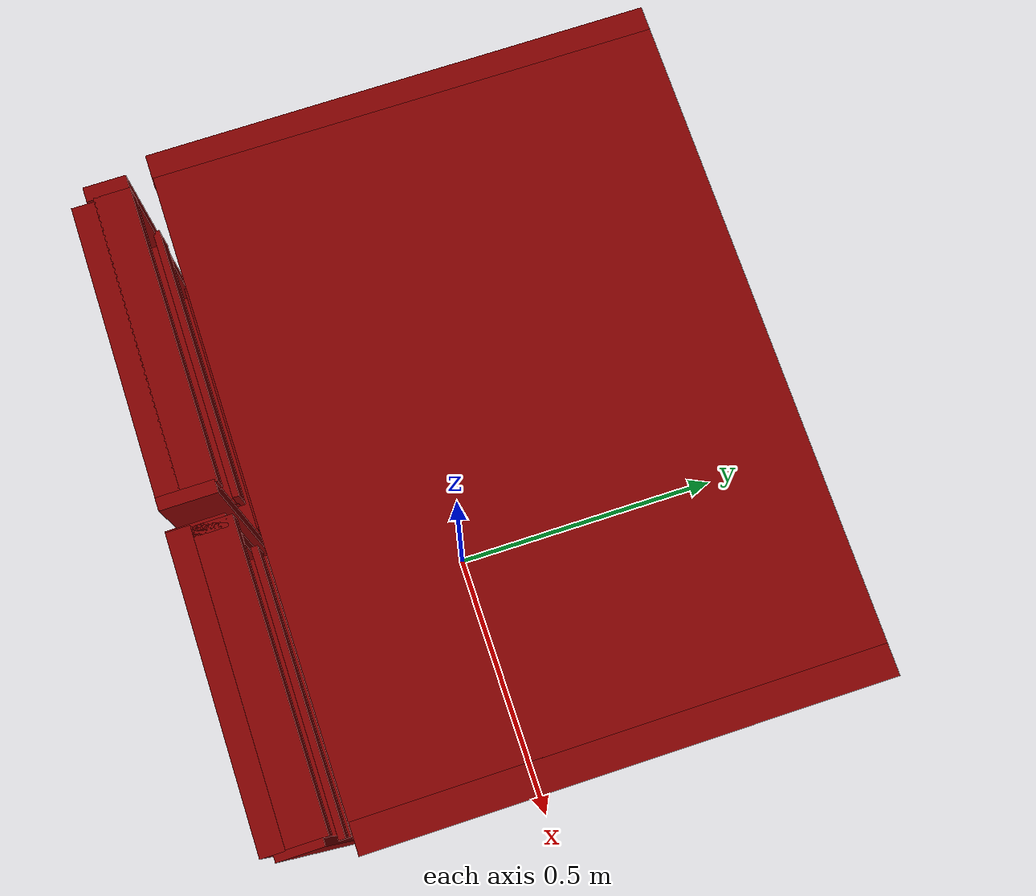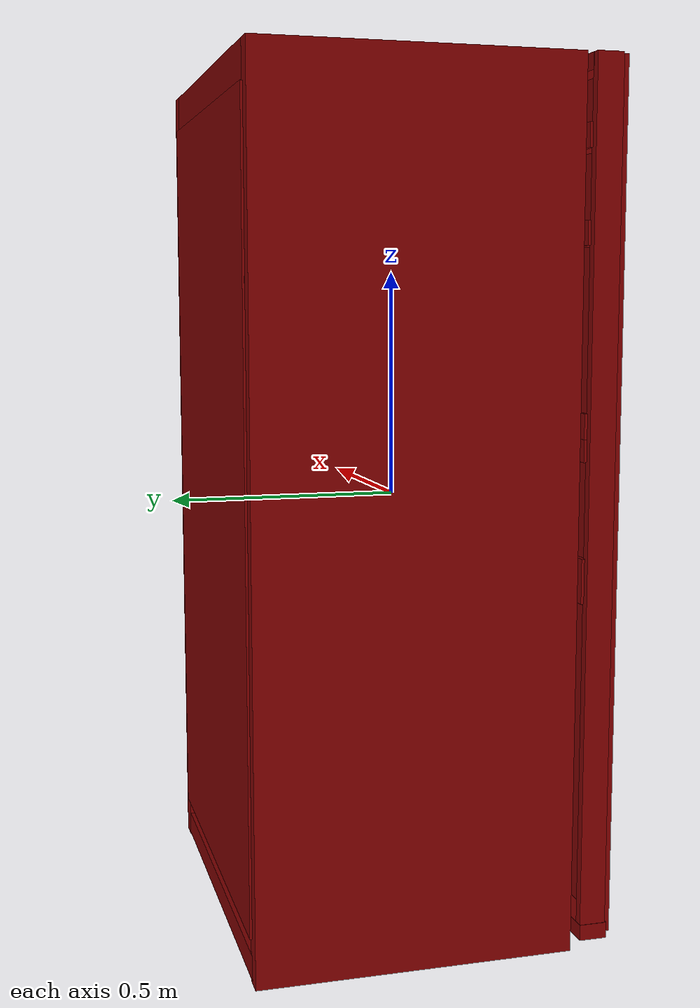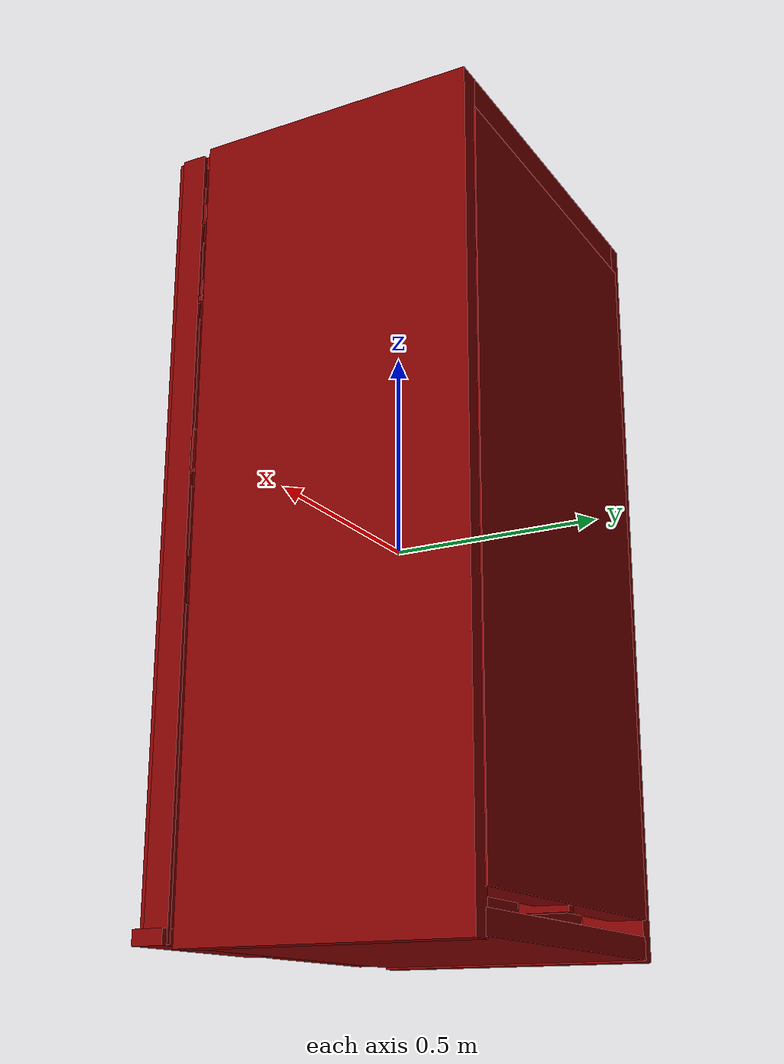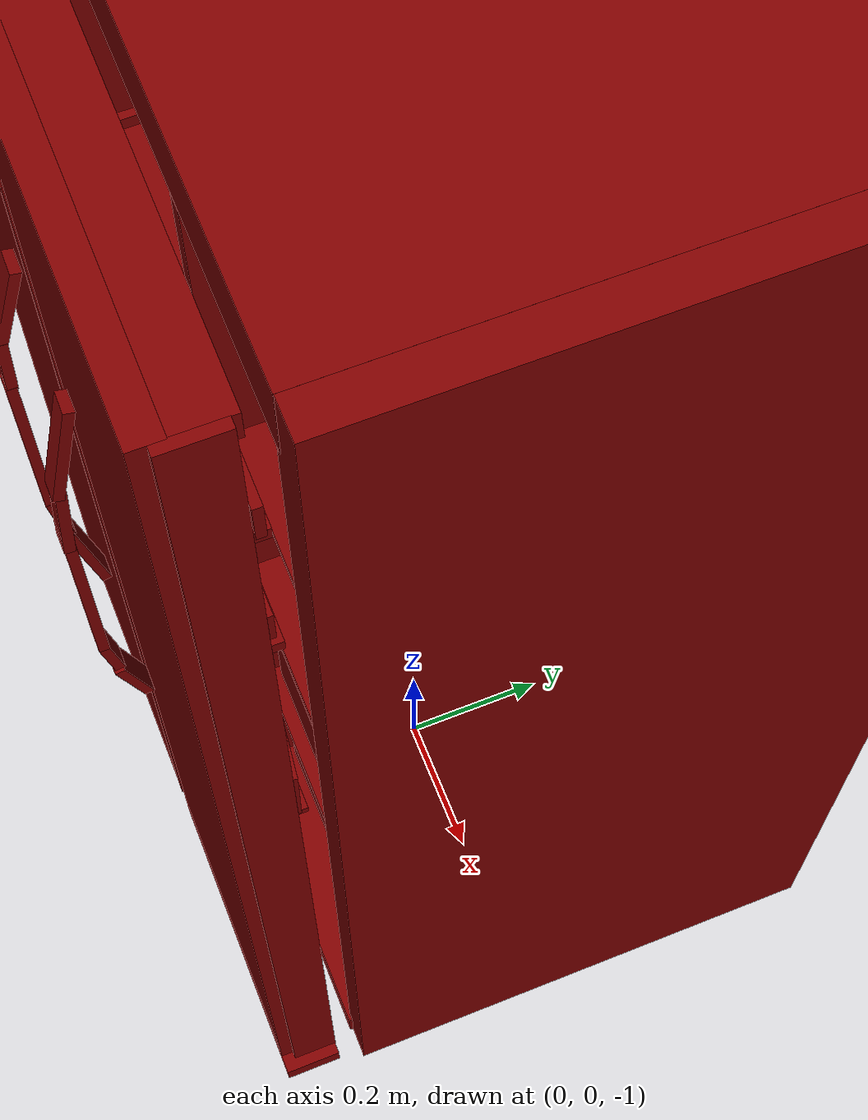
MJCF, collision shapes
<mujoco model="model">
  <compiler angle="radian"/>
  <asset>
    <mesh file="visuals/Body001.obj" name="Body001_vis"/>
    <mesh file="visuals/Body001_Clear.obj" name="Body001_Clear_vis"/>
    <mesh file="visuals/Door001.obj" name="Door001_vis"/>
    <mesh file="visuals/Door001_Clear.obj" name="Door001_Clear_vis"/>
    <mesh file="visuals/Door002.obj" name="Door002_vis"/>
    <mesh file="visuals/Door002_Clear.obj" name="Door002_Clear_vis"/>
    <mesh file="visuals/Drawer001.obj" name="Drawer001_vis"/>
    <mesh file="visuals/Drawer002.obj" name="Drawer002_vis"/>
    <mesh file="visuals/Drawer003.obj" name="Drawer003_vis"/>
    <mesh file="visuals/Drawer004.obj" name="Drawer004_vis"/>
    <texture file="visuals/T_BC001.png" name="Body001_material" type="2d"/>
    <material name="Body001_material" rgba="1 1 1 1.0" texture="Body001_material" shininess="0.141421377658844" specular="0.3103448502657381"/>
    <material name="Body001_Clear_material" rgba="0.986527681350708 0.9570953845977783 1.0 0.10000000149011612" shininess="0.5" specular="0.3103448502657381"/>
    <texture file="visuals/T_BC001.png" name="Door001_material" type="2d"/>
    <material name="Door001_material" rgba="1 1 1 1.0" texture="Door001_material" shininess="0.141421377658844" specular="0.3103448502657381"/>
    <material name="Door001_Clear_material" rgba="0.986527681350708 0.9570953845977783 1.0 0.10000000149011612" shininess="0.5" specular="0.3103448502657381"/>
    <texture file="visuals/T_BC001.png" name="Door002_material" type="2d"/>
    <material name="Door002_material" rgba="1 1 1 1.0" texture="Door002_material" shininess="0.141421377658844" specular="0.3103448502657381"/>
    <material name="Door002_Clear_material" rgba="0.986527681350708 0.9570953845977783 1.0 0.10000000149011612" shininess="0.5" specular="0.3103448502657381"/>
    <texture file="visuals/T_BC001.png" name="Drawer001_material" type="2d"/>
    <material name="Drawer001_material" rgba="1 1 1 1.0" texture="Drawer001_material" shininess="0.141421377658844" specular="0.3103448502657381"/>
    <material name="Drawer002_material" rgba="0.986527681350708 0.9570953845977783 1.0 0.10000000149011612" shininess="0.5" specular="0.3103448502657381"/>
    <texture file="visuals/T_BC001.png" name="Drawer003_material" type="2d"/>
    <material name="Drawer003_material" rgba="1 1 1 1.0" texture="Drawer003_material" shininess="0.141421377658844" specular="0.3103448502657381"/>
    <material name="Drawer004_material" rgba="0.986527681350708 0.9570953845977783 1.0 0.10000000149011612" shininess="0.5" specular="0.3103448502657381"/>
  </asset>
  <default>
    <default class="visual">
      <geom conaffinity="0" contype="0" group="1" type="mesh"/>
    </default>
    <default class="collision">
      <geom group="0" rgba="0.5 0 0 0.5"/>
    </default>
    <default class="spawn">
      <geom group="0" rgba="1 1 1 0.5" contype="0" conaffinity="0"/>
      <site group="0" rgba="1 1 1 0.5"/>
    </default>
    <default class="region">
      <geom group="1" conaffinity="0" contype="0" rgba="0 1 0 0"/>
    </default>
  </default>
  <worldbody>
    <body>
      <body name="object">
        <geom mesh="Body001_vis" type="mesh" solimp="0.998 0.998 0.001" solref="0.001 1" density="100" friction="0.95 0.3 0.1" class="visual" material="Body001_material"/>
        <geom class="collision" type="box" pos="-0.4410691261291504 0.07600990682840347 -0.0043752193450927734" size="0.02236836962401867 0.3384995758533478 0.9247523546218872" quat="1.0 0.0 0.0 0.0"/>
        <geom class="collision" type="box" pos="0.4377429783344269 0.07671818137168884 -0.0043752193450927734" size="0.025694509968161583 0.33779117465019226 0.9247533082962036" quat="1.0 0.0 0.0 0.0"/>
        <geom class="collision" type="box" pos="-0.004310413263738155 0.07646999508142471 0.8763190507888794" size="0.4262402057647705 0.3380391299724579 0.0441322959959507" quat="1.0 0.0 0.0 0.0"/>
        <geom class="collision" type="box" pos="-0.004310146905481815 0.10481306165456772 0.47699713706970215" size="0.4262530505657196 0.3110361397266388 0.006524365860968828" quat="1.0 0.0 0.0 0.0"/>
        <geom class="collision" type="box" pos="-0.004310437012463808 0.0817352831363678 0.12166441977024078" size="0.4262533187866211 0.29247915744781494 0.006524363998323679" quat="1.0 0.0 0.0 0.0"/>
        <geom class="collision" type="box" pos="-0.004310413263738155 0.09671813994646072 -0.5455100536346436" size="0.4262450635433197 0.3151564598083496 0.005095731001347303" quat="1.0 0.0 0.0 0.0"/>
        <geom class="collision" type="box" pos="-0.004310195334255695 0.0729612410068512 -0.21721631288528442" size="0.42624837160110474 0.28940439224243164 0.00989178940653801" quat="1.0 0.0 0.0 0.0"/>
        <geom class="collision" type="box" pos="-0.004310413263738155 0.07449338585138321 -0.8980401754379272" size="0.42624595761299133 0.3401041030883789 0.02620275504887104" quat="1.0 0.0 0.0 0.0"/>
        <geom class="collision" type="box" pos="-0.004310231655836105 0.37660980224609375 0.0037530846893787384" size="0.4262245297431946 0.04278945550322533 0.838510274887085" quat="1.0 0.0 0.0 0.0"/>
        <geom class="collision" type="box" pos="0.0007461439818143845 0.09205090254545212 0.010928511619567871" size="0.011302905157208443 0.3186957538127899 0.8603859543800354" quat="1.0 0.0 0.0 0.0"/>
        <geom class="collision" type="box" pos="0.4129561483860016 0.09179721027612686 0.47820985317230225" size="0.010294855572283268 0.3184017241001129 0.024101871997117996" quat="1.0 0.0 0.0 0.0"/>
        <geom class="collision" type="box" pos="0.4129561483860016 0.09179721027612686 0.12158538401126862" size="0.010294855572283268 0.31840118765830994 0.02410186268389225" quat="1.0 0.0 0.0 0.0"/>
        <geom class="collision" type="box" pos="-0.4177475869655609 0.09179721027612686 0.47820985317230225" size="0.010294855572283268 0.31840020418167114 0.024101844057440758" quat="1.0 0.0 0.0 0.0"/>
        <geom class="collision" type="box" pos="-0.4177475869655609 0.09179721027612686 0.12158538401126862" size="0.010294855572283268 0.31839966773986816 0.02410183474421501" quat="1.0 0.0 0.0 0.0"/>
        <body name="Body001_Clear">
          <geom mesh="Body001_Clear_vis" type="mesh" solimp="0.998 0.998 0.001" solref="0.001 1" density="100" friction="0.95 0.3 0.1" class="visual" material="Body001_Clear_material"/>
        </body>
        <body name="Door001">
          <joint axis="0.0 0.0 -1.0" pos="-0.4073425829410553 -0.3228790760040283 0.00167769193649292" limited="true" name="Door001_joint" range="0.0 1.53588974175501" type="hinge" damping="1" frictionloss="1" armature=".01" stiffness="0.05"/>
          <geom mesh="Door001_vis" type="mesh" solimp="0.998 0.998 0.001" solref="0.001 1" density="100" friction="0.95 0.3 0.1" class="visual" material="Door001_material"/>
          <geom class="collision" type="box" pos="-0.013703661039471626 -0.33325377106666565 0.0042638517916202545" size="0.008808478713035583 0.03787694126367569 0.9211474061012268" quat="1.0 0.0 0.0 0.0"/>
          <geom class="collision" type="box" pos="-0.4328634440898895 -0.3214251697063446 0.004263848066329956" size="0.010177789255976677 0.028487104922533035 0.9211285710334778" quat="1.0 0.0 0.0 0.0"/>
          <geom class="collision" type="box" pos="-0.21932578086853027 -0.3552521765232086 0.004263848066329956" size="0.20069004595279694 0.015682559460401535 0.9211285710334778" quat="1.0 0.0 0.0 0.0"/>
          <geom class="collision" type="box" pos="-0.22179344296455383 -0.3166866898536682 0.9081995487213135" size="0.2031577080488205 0.024383090436458588 0.017192905768752098" quat="1.0 0.0 0.0 0.0"/>
          <geom class="collision" type="box" pos="-0.23180566728115082 -0.32300469279289246 -0.9021533727645874" size="0.2126958668231964 0.030104922130703926 0.01719287782907486" quat="1.0 0.0 0.0 0.0"/>
          <geom class="collision" type="box" pos="-0.09932363033294678 -0.4160583019256592 0.06245935708284378" size="0.01433792058378458 0.006325282156467438 0.13573400676250458" quat="1.0 0.0 0.0 0.0"/>
          <geom class="collision" type="box" pos="-0.0958843007683754 -0.41292569041252136 0.24634183943271637" size="0.01433792058378458 0.006325869355350733 0.05106399208307266" quat="0.9991083145141602 -0.017857393249869347 0.03825243562459946 0.0006836972897872329"/>
          <geom class="collision" type="box" pos="-0.08753163367509842 -0.3943304419517517 0.3577198386192322" size="0.014337623491883278 0.00635941606014967 0.06984695047140121" quat="0.9912264943122864 -0.12651610374450684 0.03809944540262222 -0.003484612563624978"/>
          <geom class="collision" type="box" pos="-0.09550302475690842 -0.4105377197265625 -0.1117347776889801" size="0.01433792058378458 0.006336122285574675 0.03978962078690529" quat="0.9968785643577576 0.07109170407056808 -0.034251075237989426 0.002442586701363325"/>
          <geom class="collision" type="box" pos="-0.08614825457334518 -0.39351165294647217 -0.2067231386899948" size="0.016561392694711685 0.006352489348500967 0.061079926788806915" quat="0.9923819303512573 0.11279919743537903 -0.049467939883470535 0.0027253851294517517"/>
          <body name="Door001_Clear">
            <geom mesh="Door001_Clear_vis" type="mesh" solimp="0.998 0.998 0.001" solref="0.001 1" density="100" friction="0.95 0.3 0.1" class="visual" material="Door001_Clear_material"/>
            <geom class="collision" type="box" pos="-0.22931115329265594 -0.2913651466369629 0.7650696039199829" size="0.19759124517440796 0.004692623857408762 0.025056399405002594" quat="1.0 0.0 0.0 0.0"/>
            <geom class="collision" type="box" pos="-0.22931115329265594 -0.2913651466369629 0.5729924440383911" size="0.19759124517440796 0.0046926275826990604 0.025056399405002594" quat="1.0 0.0 0.0 0.0"/>
            <geom class="collision" type="box" pos="-0.12789978086948395 -0.2913651466369629 0.3452953100204468" size="0.10206366330385208 0.004692630842328072 0.039326637983322144" quat="1.0 0.0 0.0 0.0"/>
            <geom class="collision" type="box" pos="-0.22685538232326508 -0.2913651466369629 0.1322213113307953" size="0.2010192573070526 0.004692634101957083 0.024216582998633385" quat="1.0 0.0 0.0 0.0"/>
            <geom class="collision" type="box" pos="-0.22685538232326508 -0.2913651466369629 -0.1409488469362259" size="0.2010192573070526 0.004692637361586094 0.04747087508440018" quat="1.0 0.0 0.0 0.0"/>
            <geom class="collision" type="box" pos="-0.3633672297000885 -0.2913651466369629 0.18166610598564148" size="0.06450740993022919 0.004692640621215105 0.026638546958565712" quat="1.0 0.0 0.0 0.0"/>
            <geom class="collision" type="box" pos="-0.22931115329265594 -0.3158799409866333 0.7475988864898682" size="0.19759124517440796 0.02198868803679943 0.007585657294839621" quat="1.0 0.0 0.0 0.0"/>
            <geom class="collision" type="box" pos="-0.22931115329265594 -0.3160017430782318 0.5558247566223145" size="0.19759124517440796 0.022110480815172195 0.007585657294839621" quat="1.0 0.0 0.0 0.0"/>
            <geom class="collision" type="box" pos="-0.13163281977176666 -0.3163997232913971 0.3174150884151459" size="0.09991291910409927 0.02250850759446621 0.007585657294839621" quat="1.0 0.0 0.0 0.0"/>
            <geom class="collision" type="box" pos="-0.22931115329265594 -0.3164888620376587 0.11656299978494644" size="0.19759124517440796 0.022597644478082657 0.007585657294839621" quat="1.0 0.0 0.0 0.0"/>
            <geom class="collision" type="box" pos="-0.22931115329265594 -0.31620877981185913 -0.18437471985816956" size="0.19759124517440796 0.02231754921376705 0.007585657294839621" quat="1.0 0.0 0.0 0.0"/>
          </body>
        </body>
        <body name="Door002">
          <joint axis="0.0 0.0 1.0" pos="0.40920016169548035 -0.32322797179222107 0.0012650489807128906" limited="true" name="Door002_joint" range="0.0 1.53588974175501" type="hinge" damping="1" frictionloss="1" armature=".01" stiffness="0.05"/>
          <geom mesh="Door002_vis" type="mesh" solimp="0.998 0.998 0.001" solref="0.001 1" density="100" friction="0.95 0.3 0.1" class="visual" material="Door002_material"/>
          <geom class="collision" type="box" pos="0.10024000704288483 -0.4160583019256592 0.07347221672534943" size="0.013859633356332779 0.00632527656853199 0.1437266618013382" quat="1.0 0.0 0.0 0.0"/>
          <geom class="collision" type="box" pos="0.24303387105464935 -0.3329736292362213 -0.9030005931854248" size="0.2126958668231964 0.038362935185432434 0.017192933708429337" quat="1.0 0.0 0.0 0.0"/>
          <geom class="collision" type="box" pos="0.22801752388477325 -0.3151857256889343 0.9081995487213135" size="0.20196133852005005 0.028549794107675552 0.017192905768752098" quat="1.0 0.0 0.0 0.0"/>
          <geom class="collision" type="box" pos="0.22696493566036224 -0.3552521765232086 0.0038402676582336426" size="0.2034148871898651 0.015682479366660118 0.921563982963562" quat="1.0 0.0 0.0 0.0"/>
          <geom class="collision" type="box" pos="0.03092644363641739 -0.33294251561164856 0.003840269520878792" size="0.008808478713035583 0.03780130669474602 0.9215521812438965" quat="1.0 0.0 0.0 0.0"/>
          <geom class="collision" type="box" pos="0.4347332715988159 -0.32424038648605347 0.0038402676582336426" size="0.005416062194854021 0.03029293194413185 0.9215624332427979" quat="1.0 0.0 0.0 0.0"/>
          <geom class="collision" type="box" pos="0.0987120047211647 -0.41292569041252136 0.24634183943271637" size="0.014337879605591297 0.006329668685793877 0.051037032157182693" quat="0.997413694858551 -0.04549665376543999 -0.055638715624809265 0.0005475072539411485"/>
          <geom class="collision" type="box" pos="0.08866915106773376 -0.3943304419517517 0.3570123314857483" size="0.014337624423205853 0.006359416991472244 0.06984694302082062" quat="0.9909963607788086 -0.12579908967018127 -0.04367765411734581 -0.01389392465353012"/>
          <geom class="collision" type="box" pos="0.09590928256511688 -0.4105377197265625 -0.10886866599321365" size="0.01433792058378458 0.006336122285574675 0.03978961333632469" quat="0.9967833161354065 0.07108497619628906 0.03691879287362099 -0.002632841933518648"/>
          <geom class="collision" type="box" pos="0.08814927935600281 -0.39351165294647217 -0.20647747814655304" size="0.016561394557356834 0.006352488417178392 0.061079930514097214" quat="0.9919891357421875 0.11244513094425201 0.05680180713534355 -0.009337203577160835"/>
          <body name="Door002_Clear">
            <geom mesh="Door002_Clear_vis" type="mesh" solimp="0.998 0.998 0.001" solref="0.001 1" density="100" friction="0.95 0.3 0.1" class="visual" material="Door002_Clear_material"/>
            <geom class="collision" type="box" pos="0.24209630489349365 -0.30850422382354736 0.7465609312057495" size="0.19452978670597076 0.029786378145217896 0.007585657294839621" quat="1.0 0.0 0.0 0.0"/>
            <geom class="collision" type="box" pos="0.2477860450744629 -0.2734065055847168 -0.14926406741142273" size="0.07475502043962479 0.004695206414908171 0.0374634750187397" quat="0.9992344379425049 0.0 -0.0 -0.03912157937884331"/>
            <geom class="collision" type="box" pos="0.23850412666797638 -0.2786092460155487 0.1361234188079834" size="0.0884072333574295 0.004692703485488892 0.024216582998633385" quat="1.0 0.0 0.0 0.0"/>
            <geom class="collision" type="box" pos="0.23604832589626312 -0.3110301196575165 0.11347717046737671" size="0.20127975940704346 0.02844703011214733 0.0051444279961287975" quat="1.0 0.0 0.0 0.0"/>
            <geom class="collision" type="box" pos="0.24209630489349365 -0.3138968050479889 0.5413864850997925" size="0.19759124517440796 0.03187356889247894 0.007585657294839621" quat="1.0 0.0 0.0 0.0"/>
            <geom class="collision" type="box" pos="0.22863076627254486 -0.2915710508823395 0.5639277696609497" size="0.20514021813869476 0.004692713264375925 0.02976168505847454" quat="1.0 0.0 0.0 0.0"/>
            <geom class="collision" type="box" pos="0.23888950049877167 -0.28725168108940125 0.7691848278045654" size="0.19795413315296173 0.004692741669714451 0.02466580830514431" quat="1.0 0.0 0.0 0.0"/>
            <geom class="collision" type="box" pos="0.3395196199417114 -0.282191663980484 0.16375821828842163" size="0.09933730214834213 0.004698845092207193 0.050041623413562775" quat="0.998146116733551 -0.0071023511700332165 -0.0020397240296006203 -0.060413114726543427"/>
            <geom class="collision" type="box" pos="0.11149363964796066 -0.28066521883010864 -0.1398429274559021" size="0.07467285543680191 0.004701041616499424 0.05291180685162544" quat="0.9974104762077332 0.0 0.0 0.07191921770572662"/>
            <geom class="collision" type="box" pos="0.3570712208747864 -0.28506457805633545 -0.1398429274559021" size="0.07462887465953827 0.004704158287495375 0.05291180685162544" quat="0.9964289665222168 0.0 0.0 -0.08443529158830643"/>
            <geom class="collision" type="box" pos="0.1280674934387207 -0.28151074051856995 0.1361234188079834" size="0.08835799247026443 0.004695718642324209 0.024216582998633385" quat="0.9990748763084412 0.0 0.0 0.043005213141441345"/>
          </body>
        </body>
        <body name="Drawer001">
          <joint axis="0.0 -1.0 0.0" pos="-0.17577505111694336 0.04799296706914902 -0.4128769338130951" limited="true" name="Drawer001_joint" range="0.0 0.45" type="slide" damping="1" frictionloss="1" armature=".01" stiffness="0.05"/>
          <geom mesh="Drawer001_vis" type="mesh" solimp="0.998 0.998 0.001" solref="0.001 1" density="100" friction="0.95 0.3 0.1" class="visual" material="Drawer001_material"/>
          <geom class="collision" type="box" pos="-0.023232053965330124 0.06041004881262779 -0.4130253493785858" size="0.002712058601900935 0.23799371719360352 0.12486713379621506" quat="1.0 0.0 0.0 0.0"/>
          <geom class="collision" type="box" pos="-0.32895803451538086 0.06041004881262779 -0.4130253493785858" size="0.0027120602317154408 0.23799385130405426 0.12486714869737625" quat="1.0 0.0 0.0 0.0"/>
          <geom class="collision" type="box" pos="-0.1762138307094574 0.3050999641418457 -0.3803422451019287" size="0.15203140676021576 0.007976863533258438 0.08488413691520691" quat="1.0 0.0 0.0 0.0"/>
          <geom class="collision" type="box" pos="-0.17571616172790527 -0.028919432312250137 -0.5335047245025635" size="0.15155120193958282 0.15638518333435059 0.004946207627654076" quat="1.0 0.0 0.0 0.0"/>
          <geom class="collision" type="box" pos="-0.1762138307094574 -0.18631528317928314 -0.4130253493785858" size="0.15203651785850525 0.01365435216575861 0.12486718595027924" quat="1.0 0.0 0.0 0.0"/>
          <geom class="collision" type="box" pos="-0.17571616172790527 0.21005292236804962 -0.49843013286590576" size="0.1515526920557022 0.09573850780725479 0.0048963166773319244" quat="0.9827694892883301 0.18483532965183258 -4.1041743997010744e-17 5.158056170069876e-24"/>
        </body>
        <body name="Drawer002">
          <joint axis="0.0 -1.0 0.0" pos="0.1732637733221054 0.04799294099211693 -0.4128645658493042" limited="true" name="Drawer002_joint" range="0.0 0.45" type="slide" damping="1" frictionloss="1" armature=".01" stiffness="0.05"/>
          <geom mesh="Drawer002_vis" type="mesh" solimp="0.998 0.998 0.001" solref="0.001 1" density="100" friction="0.95 0.3 0.1" class="visual" material="Drawer002_material"/>
          <geom class="collision" type="box" pos="0.1748180091381073 -0.18631528317928314 -0.4130253493785858" size="0.15203656256198883 0.013654360547661781 0.12486720085144043" quat="1.0 0.0 0.0 0.0"/>
          <geom class="collision" type="box" pos="0.17531567811965942 0.06041004881262779 -0.5344602465629578" size="0.15155287086963654 0.23799452185630798 0.004946121480315924" quat="1.0 0.0 0.0 0.0"/>
          <geom class="collision" type="box" pos="0.1748180091381073 0.29517343640327454 -0.4130253493785858" size="0.15203668177127838 0.003240549238398671 0.12486723065376282" quat="1.0 0.0 0.0 0.0"/>
          <geom class="collision" type="box" pos="0.022073820233345032 0.06041004881262779 -0.4130253493785858" size="0.0027120725717395544 0.23799479007720947 0.12486724555492401" quat="1.0 0.0 0.0 0.0"/>
          <geom class="collision" type="box" pos="0.3277997374534607 0.06041004881262779 -0.4130253493785858" size="0.0027120744343847036 0.23799492418766022 0.12486725300550461" quat="1.0 0.0 0.0 0.0"/>
        </body>
        <body name="Drawer003">
          <joint axis="0.0 -1.0 0.0" pos="-0.17577503621578217 0.04797326773405075 -0.7060524225234985" limited="true" name="Drawer003_joint" range="0.0 0.45" type="slide" damping="1" frictionloss="1" armature=".01" stiffness="0.05"/>
          <geom mesh="Drawer003_vis" type="mesh" solimp="0.998 0.998 0.001" solref="0.001 1" density="100" friction="0.95 0.3 0.1" class="visual" material="Drawer003_material"/>
          <geom class="collision" type="box" pos="-0.1762138307094574 -0.18447530269622803 -0.706080436706543" size="0.15203389525413513 0.013654402457177639 0.14127422869205475" quat="1.0 0.0 0.0 0.0"/>
          <geom class="collision" type="box" pos="-0.17571616172790527 0.06225001811981201 -0.8455685973167419" size="0.15155024826526642 0.2379951924085617 0.0029689790681004524" quat="1.0 0.0 0.0 0.0"/>
          <geom class="collision" type="box" pos="-0.1762138307094574 0.29701340198516846 -0.706080436706543" size="0.15203413367271423 0.0032405597157776356 0.14127464592456818" quat="1.0 0.0 0.0 0.0"/>
          <geom class="collision" type="box" pos="-0.32895803451538086 0.06225001811981201 -0.706080436706543" size="0.0027119950391352177 0.2379954606294632 0.1412748545408249" quat="1.0 0.0 0.0 0.0"/>
          <geom class="collision" type="box" pos="-0.023232053965330124 0.06225001811981201 -0.706080436706543" size="0.0027119989972561598 0.23799559473991394 0.1412750780582428" quat="1.0 0.0 0.0 0.0"/>
        </body>
        <body name="Drawer004">
          <joint axis="0.0 -1.0 0.0" pos="0.16833947598934174 0.04797321557998657 -0.7060525417327881" limited="true" name="Drawer004_joint" range="0.0 0.45" type="slide" damping="1" frictionloss="1" armature=".01" stiffness="0.05"/>
          <geom mesh="Drawer004_vis" type="mesh" solimp="0.998 0.998 0.001" solref="0.001 1" density="100" friction="0.95 0.3 0.1" class="visual" material="Drawer004_material"/>
          <geom class="collision" type="box" pos="0.16885675489902496 -0.18447530269622803 -0.706080436706543" size="0.1462731510400772 0.013654444366693497 0.1412752866744995" quat="1.0 0.0 0.0 0.0"/>
          <geom class="collision" type="box" pos="0.1693544238805771 0.06225001811981201 -0.8441596627235413" size="0.1457895040512085 0.23799586296081543 0.002968995599076152" quat="1.0 0.0 0.0 0.0"/>
          <geom class="collision" type="box" pos="0.16885676980018616 0.29701340198516846 -0.706080436706543" size="0.1462733894586563 0.0032405701931566 0.14127570390701294" quat="1.0 0.0 0.0 0.0"/>
          <geom class="collision" type="box" pos="0.021873928606510162 0.06225001811981201 -0.706080436706543" size="0.0027120141312479973 0.23799613118171692 0.14127592742443085" quat="1.0 0.0 0.0 0.0"/>
          <geom class="collision" type="box" pos="0.3160771131515503 0.06225001811981201 -0.706080436706543" size="0.0027120178565382957 0.23799626529216766 0.14127613604068756" quat="1.0 0.0 0.0 0.0"/>
        </body>
        <geom class="region" name="reg_main" type="box" pos="-7.450578820566989e-09 0.021272972226142883 0.0" size="0.4634374976158142 0.40132811665534973 0.9250912666320801"/>
      </body>
    </body>
  </worldbody>
  <actuator>
    <motor name="Door001_joint_actuator" joint="Door001_joint" gear="50"/>
    <motor name="Door002_joint_actuator" joint="Door002_joint" gear="50"/>
    <motor name="Drawer001_joint_actuator" joint="Drawer001_joint" gear="50"/>
    <motor name="Drawer002_joint_actuator" joint="Drawer002_joint" gear="50"/>
    <motor name="Drawer003_joint_actuator" joint="Drawer003_joint" gear="50"/>
    <motor name="Drawer004_joint_actuator" joint="Drawer004_joint" gear="50"/>
  </actuator>
</mujoco>
